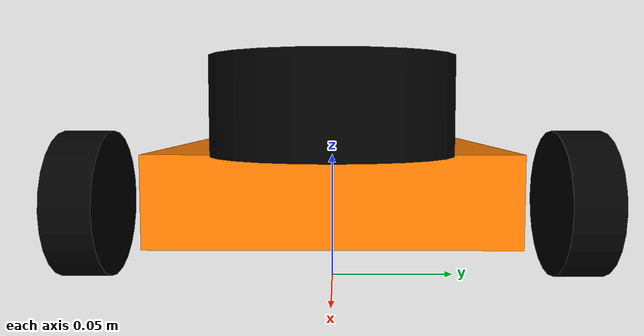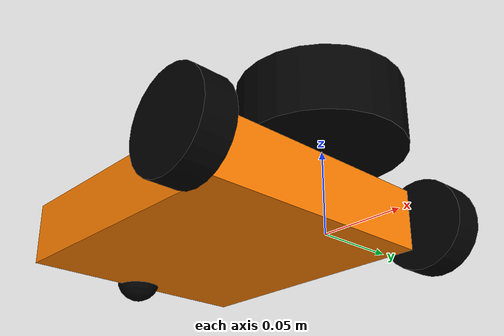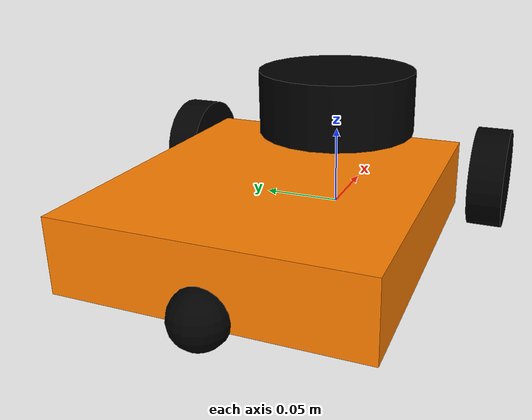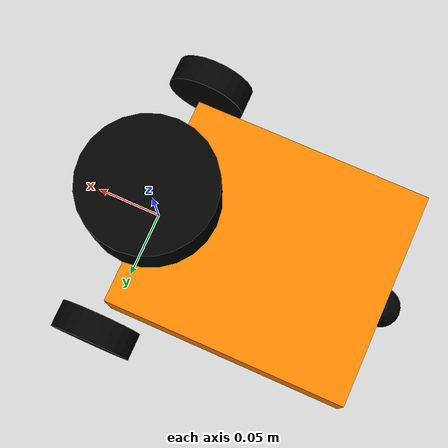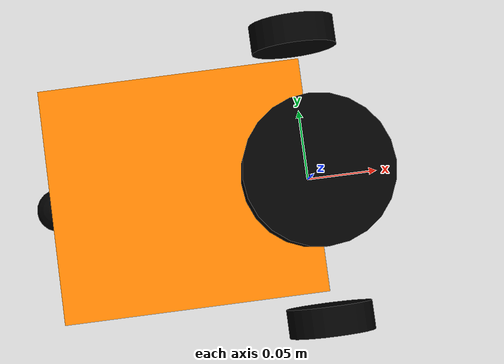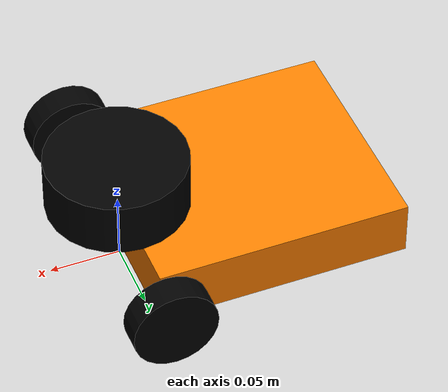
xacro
<?xml version="1.0"?>
<robot xmlns:xacro="http://www.ros.org/wiki/xacro" name="robot_diferencial">

  <!-- macros de inercia para las fisicas -->
  <xacro:macro name="inercia_caja" params="m x y z xyz rpy">
    <inertial>
      <origin xyz="${xyz}" rpy="${rpy}"/>
      <mass value="${m}"/>
      <inertia ixx="${(m/12) * (y*y + z*z)}" ixy="0.0" ixz="0.0" iyy="${(m/12) * (x*x + z*z)}" iyz="0.0" izz="${(m/12) * (x*x + y*y)}"/>
    </inertial>
  </xacro:macro>

  <xacro:macro name="inercia_cilindro" params="m r h xyz rpy">
    <inertial>
      <origin xyz="${xyz}" rpy="${rpy}"/>
      <mass value="${m}"/>
      <inertia ixx="${(m/12) * (3*r*r + h*h)}" ixy="0.0" ixz="0.0" iyy="${(m/12) * (3*r*r + h*h)}" iyz="0.0" izz="${(m/2) * (r*r)}"/>
    </inertial>
  </xacro:macro>

  <xacro:macro name="inercia_esfera" params="m r xyz rpy">
    <inertial>
      <origin xyz="${xyz}" rpy="${rpy}"/>
      <mass value="${m}"/>
      <inertia ixx="${(2/5) * m * r*r}" ixy="0.0" ixz="0.0" iyy="${(2/5) * m * r*r}" iyz="0.0" izz="${(2/5) * m * r*r}"/>
    </inertial>
  </xacro:macro>

  <!-- 1. MATERIALES -->
  <material name="naranja">
    <color rgba="1 0.5 0 1"/>
  </material>
  <material name="negro">
    <color rgba="0 0 0 1"/>
  </material>

  <!-- 2. BASE FOOTPRINT -->
  <link name="base_footprint">
    <xacro:inercia_caja m="0.001" x="0.001" y="0.001" z="0.001" xyz="0 0 0" rpy="0 0 0"/>
  </link>

  <!-- Eslabón de apoyo (Dummy Link) para evitar problemas de inercia -->
  <link name="dummy_link"/>

  <joint name="dummy_joint" type="fixed">
    <parent link="dummy_link"/>
    <child link="base_footprint"/>
  </joint>

  <!-- 3. CHASIS -->
  <link name="base_link">
    <visual>
      <origin xyz="-0.09 0 0.03" rpy="0 0 0"/>
      <geometry>
        <box size="0.18 0.16 0.04"/>
      </geometry>
      <material name="naranja"/>
    </visual>
    <collision>
      <origin xyz="-0.09 0 0.03" rpy="0 0 0"/>
      <geometry>
        <box size="0.18 0.16 0.04"/>
      </geometry>
    </collision>
    <!-- chasis de 1 kg -->
    <xacro:inercia_caja m="1.0" x="0.18" y="0.16" z="0.04" xyz="-0.09 0 0.03" rpy="0 0 0"/>
  </link>

  <joint name="base_joint" type="fixed">
    <parent link="base_footprint"/>
    <child link="base_link"/>
    <origin xyz="0 0 0" rpy="0 0 0"/>
  </joint>

  <!-- 4. RUEDA MOTRIZ IZQUIERDA -->
  <link name="rueda_izquierda">
    <visual>
      <geometry>
        <cylinder radius="0.03" length="0.02"/>
      </geometry>
      <material name="negro"/>
    </visual>
    <collision>
      <geometry>
        <sphere radius="0.03"/>
      </geometry>
    </collision>
    <xacro:inercia_cilindro m="0.1" r="0.03" h="0.02" xyz="0 0 0" rpy="0 0 0"/>
  </link>

  <joint name="rueda_izquierda_joint" type="continuous">
    <parent link="base_link"/>
    <child link="rueda_izquierda"/>
    <origin xyz="0 0.10 0.03" rpy="-1.5708 0 0"/>
    <axis xyz="0 0 1"/>
  </joint>

  <!-- 5. RUEDA MOTRIZ DERECHA -->
  <link name="rueda_derecha">
    <visual>
      <geometry>
        <cylinder radius="0.03" length="0.02"/>
      </geometry>
      <material name="negro"/>
    </visual>
    <collision>
      <geometry>
        <sphere radius="0.03"/>
      </geometry>
    </collision>
    <xacro:inercia_cilindro m="0.1" r="0.03" h="0.02" xyz="0 0 0" rpy="0 0 0"/>
  </link>

  <joint name="rueda_derecha_joint" type="continuous">
    <parent link="base_link"/>
    <child link="rueda_derecha"/>
    <origin xyz="0 -0.10 0.03" rpy="-1.5708 0 0"/>
    <axis xyz="0 0 1"/>
  </joint>

  <!-- 6. RUEDA LOCA -->
  <link name="rueda_loca">
    <visual>
      <geometry>
        <sphere radius="0.015"/>
      </geometry>
      <material name="negro"/>
    </visual>
    <collision>
      <geometry>
        <sphere radius="0.014"/>
      </geometry>
    </collision>
    <xacro:inercia_esfera m="0.05" r="0.015" xyz="0 0 0" rpy="0 0 0"/>
  </link>

  <joint name="rueda_loca_joint" type="fixed">
    <parent link="base_link"/>
    <child link="rueda_loca"/>
    <origin xyz="-0.18 0 0.015" rpy="0 0 0"/>
  </joint>

  <!-- 7. SENSOR LASER -->
  <link name="sensor_laser">
    <visual>
      <geometry>
        <cylinder radius="0.05" length="0.04"/>
      </geometry>
      <material name="negro">
        <color rgba="0 0 0 1"/>
      </material>
    </visual>
    <collision>
      <geometry>
        <cylinder radius="0.05" length="0.04"/>
      </geometry>
    </collision>
    <xacro:inercia_cilindro m="0.1" r="0.05" h="0.04" xyz="0 0 0" rpy="0 0 0"/>
  </link>

  <joint name="base_a_sensor" type="fixed">
    <parent link="base_link"/>
    <child link="sensor_laser"/>
    <origin xyz="0 0 0.07" rpy="0 0 0"/>
  </joint>

  <!-- CONFIGURACIÓN DE FÍSICAS Y GAZEBO -->
  <gazebo reference="rueda_loca">
    <mu1>0.0</mu1>
    <mu2>0.0</mu2>
  </gazebo>

  <gazebo reference="rueda_izquierda">
    <mu1>1.0</mu1>
    <mu2>1.0</mu2>
  </gazebo>

  <gazebo reference="rueda_derecha">
    <mu1>1.0</mu1>
    <mu2>1.0</mu2>
  </gazebo>

  <gazebo reference="sensor_laser">
    <sensor name="lidar" type="gpu_lidar">
      <always_on>true</always_on>
      <visualize>true</visualize>
      <update_rate>10</update_rate>
      <topic>scan</topic>
      <gz_frame_id>sensor_laser</gz_frame_id>
      <pose>0 0 0 0 0 0</pose>
      <ray>
        <scan>
          <horizontal>
            <samples>360</samples>
            <resolution>1.0</resolution>
            <min_angle>-3.1416</min_angle>
            <max_angle>3.1416</max_angle>
          </horizontal>
        </scan>
        <range>
          <min>0.15</min>
          <max>8.0</max>
          <resolution>0.01</resolution>
        </range>
      </ray>
    </sensor>
  </gazebo>

  <!-- controlador de las ruedas para gazebo harmonic -->
  <gazebo>
    <plugin filename="gz-sim-diff-drive-system" name="gz::sim::systems::DiffDrive">
      <left_joint>rueda_izquierda_joint</left_joint>
      <right_joint>rueda_derecha_joint</right_joint>
      <wheel_separation>0.20</wheel_separation>
      <wheel_radius>0.03</wheel_radius>
      <topic>cmd_vel</topic>
      <odom_topic>odom</odom_topic>
      <frame_id>odom</frame_id>
      <child_frame_id>base_footprint</child_frame_id>
    </plugin>
  </gazebo>

  <!-- activar el motor de sensores de gazebo -->
  <gazebo>
    <plugin filename="gz-sim-sensors-system" name="gz::sim::systems::Sensors">
      <render_engine>ogre2</render_engine>
    </plugin>
  </gazebo>

</robot>
